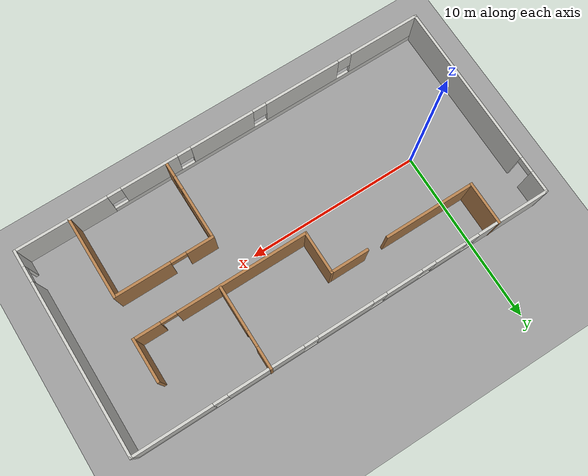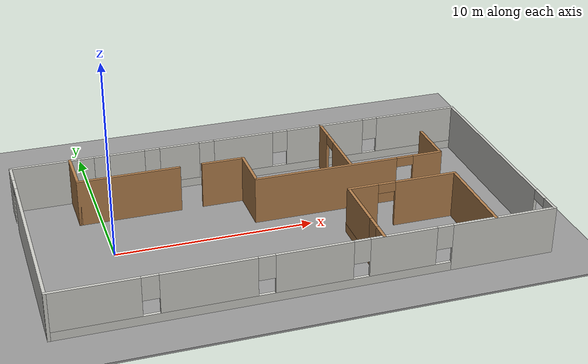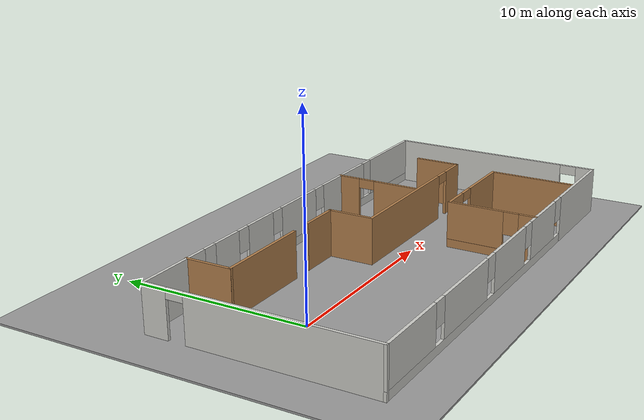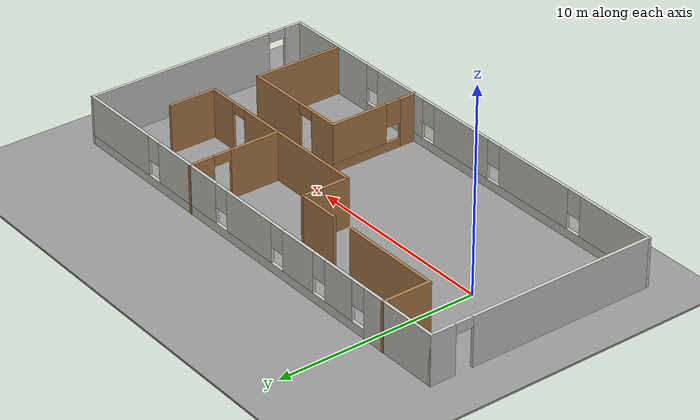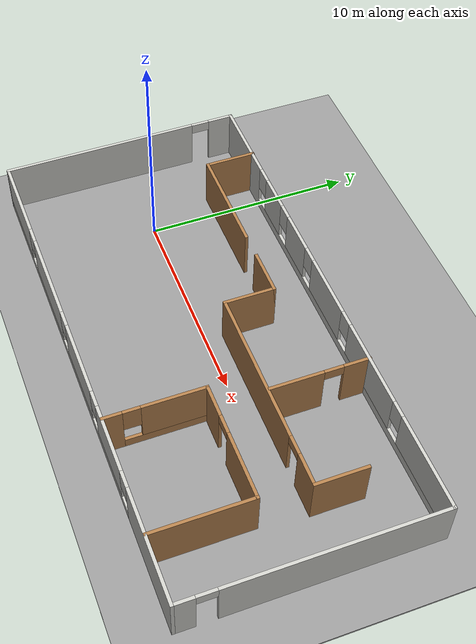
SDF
<sdf version="1.7">
 <world name="default">
  <light name="sun" type="directional">
   <pose>0 0 10 0 -0 0</pose>
   <diffuse>0.8 0.8 0.8 1</diffuse>
   <specular>0.2 0.2 0.2 1</specular>
   <attenuation>
    <range>1000</range>
    <constant>0.9</constant>
    <linear>0.01</linear>
    <quadratic>0.001</quadratic>
   </attenuation>
   <direction>-0.5 0.1 -0.9</direction>
   <spot><inner_angle>0</inner_angle><outer_angle>0</outer_angle><falloff>0</falloff></spot>
  </light>
  <model name="ground_plane">
   <static>1</static>
   <link name="link">
    <collision name="collision">
     <geometry><plane><normal>0 0 1</normal><size>100 100</size></plane></geometry>
     <surface>
      <contact><collide_bitmask>65535</collide_bitmask></contact>
      <friction><ode><mu>100</mu><mu2>50</mu2></ode></friction>
     </surface>
    </collision>
    <visual name="visual">
     <cast_shadows>0</cast_shadows>
     <geometry><plane><normal>0 0 1</normal><size>100 100</size></plane></geometry>
     <material>
      <script><uri>file://media/materials/scripts/gazebo.material</uri><name>Gazebo/Grey</name></script>
     </material>
    </visual>
   </link>
  </model>
  <gravity>0 0 -9.8</gravity>
  <magnetic_field>6e-06 2.3e-05 -4.2e-05</magnetic_field>
  <atmosphere type="adiabatic"/>
  <physics type="ode">
   <max_step_size>0.001</max_step_size>
   <real_time_factor>1</real_time_factor>
   <real_time_update_rate>1000</real_time_update_rate>
  </physics>
  <scene><ambient>0.4 0.4 0.4 1</ambient><background>0.7 0.7 0.7 1</background><shadows>1</shadows></scene>
  <audio><device>default</device></audio>
  <spherical_coordinates>
   <surface_model>EARTH_WGS84</surface_model>
   <latitude_deg>0</latitude_deg>
   <longitude_deg>0</longitude_deg>
   <elevation>0</elevation>
   <heading_deg>0</heading_deg>
  </spherical_coordinates>
  <model name="office_floor">
   <pose>8.002 -0.248582 0 0 -0 0</pose>
   <link name="Wall_1">
    <pose>-12.05 -0.011418 0 0 -0 1.5708</pose>
    <visual name="Wall_1_Visual_0">
     <pose>-1.0945 0 1.25 0 -0 0</pose>
     <geometry><box><size>9.561 0.15 2.5</size></box></geometry>
     <material>
      <script><uri>file://media/materials/scripts/gazebo.material</uri><name>Gazebo/CeilingTiled</name></script>
      <ambient>1 1 1 1</ambient>
     </material>
     <meta><layer>0</layer></meta>
    </visual>
    <collision name="Wall_1_Collision_0">
     <geometry><box><size>9.561 0.15 2.5</size></box></geometry>
     <pose>-1.0945 0 1.25 0 -0 0</pose>
    </collision>
    <visual name="Wall_1_Visual_1">
     <pose>5.2305 0 1.25 0 -0 0</pose>
     <geometry><box><size>1.289 0.15 2.5</size></box></geometry>
     <material>
      <script><uri>file://media/materials/scripts/gazebo.material</uri><name>Gazebo/CeilingTiled</name></script>
      <ambient>1 1 1 1</ambient>
     </material>
     <meta><layer>0</layer></meta>
    </visual>
    <collision name="Wall_1_Collision_1">
     <geometry><box><size>1.289 0.15 2.5</size></box></geometry>
     <pose>5.2305 0 1.25 0 -0 0</pose>
    </collision>
    <visual name="Wall_1_Visual_2">
     <pose>4.136 0 2.25 0 -0 0</pose>
     <geometry><box><size>0.9 0.15 0.5</size></box></geometry>
     <material>
      <script><uri>file://media/materials/scripts/gazebo.material</uri><name>Gazebo/CeilingTiled</name></script>
      <ambient>1 1 1 1</ambient>
     </material>
     <meta><layer>0</layer></meta>
    </visual>
    <collision name="Wall_1_Collision_2">
     <geometry><box><size>0.9 0.15 0.5</size></box></geometry>
     <pose>4.136 0 2.25 0 -0 0</pose>
    </collision>
   </link>
   <link name="Wall_10">
    <collision name="Wall_10_Collision">
     <geometry><box><size>2.5 0.15 2.5</size></box></geometry>
     <pose>0 0 1.25 0 -0 0</pose>
    </collision>
    <visual name="Wall_10_Visual">
     <pose>0 0 1.25 0 -0 0</pose>
     <geometry><box><size>2.5 0.15 2.5</size></box></geometry>
     <material>
      <script><uri>file://media/materials/scripts/gazebo.material</uri><name>Gazebo/Wood</name></script>
      <ambient>1 1 1 1</ambient>
     </material>
     <meta><layer>0</layer></meta>
    </visual>
    <pose>-9.06907 4.63642 0 0 -0 -1.5708</pose>
   </link>
   <link name="Wall_11">
    <collision name="Wall_11_Collision">
     <geometry><box><size>5.25 0.15 2.5</size></box></geometry>
     <pose>0 0 1.25 0 -0 0</pose>
    </collision>
    <visual name="Wall_11_Visual">
     <pose>0 0 1.25 0 -0 0</pose>
     <geometry><box><size>5.25 0.15 2.5</size></box></geometry>
     <material>
      <script><uri>file://media/materials/scripts/gazebo.material</uri><name>Gazebo/Wood</name></script>
      <ambient>1 1 1 1</ambient>
     </material>
     <meta><layer>0</layer></meta>
    </visual>
    <pose>-6.51907 3.46142 0 0 -0 0</pose>
   </link>
   <link name="Wall_13">
    <collision name="Wall_13_Collision">
     <geometry><box><size>2.25 0.15 2.5</size></box></geometry>
     <pose>0 0 1.25 0 -0 0</pose>
    </collision>
    <visual name="Wall_13_Visual">
     <pose>0 0 1.25 0 -0 0</pose>
     <geometry><box><size>2.25 0.15 2.5</size></box></geometry>
     <material>
      <script><uri>file://media/materials/scripts/gazebo.material</uri><name>Gazebo/Wood</name></script>
      <ambient>1 1 1 1</ambient>
     </material>
     <meta><layer>0</layer></meta>
    </visual>
    <pose>-1.66225 3.46618 0 0 -0 0</pose>
   </link>
   <link name="Wall_14">
    <collision name="Wall_14_Collision">
     <geometry><box><size>2.5 0.15 2.5</size></box></geometry>
     <pose>0 0 1.25 0 -0 0</pose>
    </collision>
    <visual name="Wall_14_Visual">
     <pose>0 0 1.25 0 -0 0</pose>
     <geometry><box><size>2.5 0.15 2.5</size></box></geometry>
     <material>
      <script><uri>file://media/materials/scripts/gazebo.material</uri><name>Gazebo/Wood</name></script>
      <ambient>1 1 1 1</ambient>
     </material>
     <meta><layer>0</layer></meta>
    </visual>
    <pose>-0.612253 2.29119 0 0 -0 -1.5708</pose>
   </link>
   <link name="Wall_15">
    <pose>4.31275 1.11618 0 0 -0 0</pose>
    <visual name="Wall_15_Visual_0">
     <pose>-1.23845 0 1.25 0 -0 0</pose>
     <geometry><box><size>7.5231 0.15 2.5</size></box></geometry>
     <material>
      <script><uri>file://media/materials/scripts/gazebo.material</uri><name>Gazebo/Wood</name></script>
      <ambient>1 1 1 1</ambient>
     </material>
     <meta><layer>0</layer></meta>
    </visual>
    <collision name="Wall_15_Collision_0">
     <geometry><box><size>7.5231 0.15 2.5</size></box></geometry>
     <pose>-1.23845 0 1.25 0 -0 0</pose>
    </collision>
    <visual name="Wall_15_Visual_1">
     <pose>4.21155 0 1.25 0 -0 0</pose>
     <geometry><box><size>1.5769 0.15 2.5</size></box></geometry>
     <material>
      <script><uri>file://media/materials/scripts/gazebo.material</uri><name>Gazebo/Wood</name></script>
      <ambient>1 1 1 1</ambient>
     </material>
     <meta><layer>0</layer></meta>
    </visual>
    <collision name="Wall_15_Collision_1">
     <geometry><box><size>1.5769 0.15 2.5</size></box></geometry>
     <pose>4.21155 0 1.25 0 -0 0</pose>
    </collision>
    <visual name="Wall_15_Visual_2">
     <pose>2.9731 0 2.25 0 -0 0</pose>
     <geometry><box><size>0.9 0.15 0.5</size></box></geometry>
     <material>
      <script><uri>file://media/materials/scripts/gazebo.material</uri><name>Gazebo/Wood</name></script>
      <ambient>1 1 1 1</ambient>
     </material>
     <meta><layer>0</layer></meta>
    </visual>
    <collision name="Wall_15_Collision_2">
     <geometry><box><size>0.9 0.15 0.5</size></box></geometry>
     <pose>2.9731 0 2.25 0 -0 0</pose>
    </collision>
   </link>
   <link name="Wall_16">
    <collision name="Wall_16_Collision">
     <geometry><box><size>2.5 0.15 2.5</size></box></geometry>
     <pose>0 0 1.25 0 -0 0</pose>
    </collision>
    <visual name="Wall_16_Visual">
     <pose>0 0 1.25 0 -0 0</pose>
     <geometry><box><size>2.5 0.15 2.5</size></box></geometry>
     <material>
      <script><uri>file://media/materials/scripts/gazebo.material</uri><name>Gazebo/Wood</name></script>
      <ambient>1 1 1 1</ambient>
     </material>
     <meta><layer>0</layer></meta>
    </visual>
    <pose>9.23775 2.29119 0 0 -0 1.5708</pose>
   </link>
   <link name="Wall_18">
    <pose>4.38516 3.51142 0 0 -0 -1.5708</pose>
    <visual name="Wall_18_Visual_0">
     <pose>-1.72933 0 1.25 0 -0 0</pose>
     <geometry><box><size>1.29135 0.15 2.5</size></box></geometry>
     <material>
      <script><uri>file://media/materials/scripts/gazebo.material</uri><name>Gazebo/Wood</name></script>
      <ambient>1 1 1 1</ambient>
     </material>
     <meta><layer>0</layer></meta>
    </visual>
    <collision name="Wall_18_Collision_0">
     <geometry><box><size>1.29135 0.15 2.5</size></box></geometry>
     <pose>-1.72933 0 1.25 0 -0 0</pose>
    </collision>
    <visual name="Wall_18_Visual_1">
     <pose>1.09567 0 1.25 0 -0 0</pose>
     <geometry><box><size>2.55865 0.15 2.5</size></box></geometry>
     <material>
      <script><uri>file://media/materials/scripts/gazebo.material</uri><name>Gazebo/Wood</name></script>
      <ambient>1 1 1 1</ambient>
     </material>
     <meta><layer>0</layer></meta>
    </visual>
    <collision name="Wall_18_Collision_1">
     <geometry><box><size>2.55865 0.15 2.5</size></box></geometry>
     <pose>1.09567 0 1.25 0 -0 0</pose>
    </collision>
    <visual name="Wall_18_Visual_2">
     <pose>-0.63365 0 2.25 0 -0 0</pose>
     <geometry><box><size>0.9 0.15 0.5</size></box></geometry>
     <material>
      <script><uri>file://media/materials/scripts/gazebo.material</uri><name>Gazebo/Wood</name></script>
      <ambient>1 1 1 1</ambient>
     </material>
     <meta><layer>0</layer></meta>
    </visual>
    <collision name="Wall_18_Collision_2">
     <geometry><box><size>0.9 0.15 0.5</size></box></geometry>
     <pose>-0.63365 0 2.25 0 -0 0</pose>
    </collision>
   </link>
   <link name="Wall_21">
    <pose>3.3977 -3.49132 0 0 -0 1.5708</pose>
    <visual name="Wall_21_Visual_0">
     <pose>-1.91194 0 1.25 0 -0 0</pose>
     <geometry><box><size>0.926126 0.15 2.5</size></box></geometry>
     <material>
      <script><uri>file://media/materials/scripts/gazebo.material</uri><name>Gazebo/Wood</name></script>
      <ambient>1 1 1 1</ambient>
     </material>
     <meta><layer>0</layer></meta>
    </visual>
    <collision name="Wall_21_Collision_0">
     <geometry><box><size>0.926126 0.15 2.5</size></box></geometry>
     <pose>-1.91194 0 1.25 0 -0 0</pose>
    </collision>
    <visual name="Wall_21_Visual_1">
     <pose>0.463063 0 0.25 0 -0 0</pose>
     <geometry><box><size>3.82387 0.15 0.5</size></box></geometry>
     <material>
      <script><uri>file://media/materials/scripts/gazebo.material</uri><name>Gazebo/Wood</name></script>
      <ambient>1 1 1 1</ambient>
     </material>
     <meta><layer>0</layer></meta>
    </visual>
    <collision name="Wall_21_Collision_1">
     <geometry><box><size>3.82387 0.15 0.5</size></box></geometry>
     <pose>0.463063 0 0.25 0 -0 0</pose>
    </collision>
    <visual name="Wall_21_Visual_2">
     <pose>0.863063 0 1.5 0 -0 0</pose>
     <geometry><box><size>3.02387 0.15 2</size></box></geometry>
     <material>
      <script><uri>file://media/materials/scripts/gazebo.material</uri><name>Gazebo/Wood</name></script>
      <ambient>1 1 1 1</ambient>
     </material>
     <meta><layer>0</layer></meta>
    </visual>
    <collision name="Wall_21_Collision_2">
     <geometry><box><size>3.02387 0.15 2</size></box></geometry>
     <pose>0.863063 0 1.5 0 -0 0</pose>
    </collision>
    <visual name="Wall_21_Visual_3">
     <pose>-1.04887 0 1.9 0 -0 0</pose>
     <geometry><box><size>0.8 0.15 1.2</size></box></geometry>
     <material>
      <script><uri>file://media/materials/scripts/gazebo.material</uri><name>Gazebo/Wood</name></script>
      <ambient>1 1 1 1</ambient>
     </material>
     <meta><layer>0</layer></meta>
    </visual>
    <collision name="Wall_21_Collision_3">
     <geometry><box><size>0.8 0.15 1.2</size></box></geometry>
     <pose>-1.04887 0 1.9 0 -0 0</pose>
    </collision>
   </link>
   <link name="Wall_22">
    <pose>6.1977 -1.19131 0 0 -0 0</pose>
    <visual name="Wall_22_Visual_0">
     <pose>-2.07601 0 1.25 0 -0 0</pose>
     <geometry><box><size>1.59799 0.15 2.5</size></box></geometry>
     <material>
      <script><uri>file://media/materials/scripts/gazebo.material</uri><name>Gazebo/Wood</name></script>
      <ambient>1 1 1 1</ambient>
     </material>
     <meta><layer>0</layer></meta>
    </visual>
    <collision name="Wall_22_Collision_0">
     <geometry><box><size>1.59799 0.15 2.5</size></box></geometry>
     <pose>-2.07601 0 1.25 0 -0 0</pose>
    </collision>
    <visual name="Wall_22_Visual_1">
     <pose>1.24899 0 1.25 0 -0 0</pose>
     <geometry><box><size>3.25201 0.15 2.5</size></box></geometry>
     <material>
      <script><uri>file://media/materials/scripts/gazebo.material</uri><name>Gazebo/Wood</name></script>
      <ambient>1 1 1 1</ambient>
     </material>
     <meta><layer>0</layer></meta>
    </visual>
    <collision name="Wall_22_Collision_1">
     <geometry><box><size>3.25201 0.15 2.5</size></box></geometry>
     <pose>1.24899 0 1.25 0 -0 0</pose>
    </collision>
    <visual name="Wall_22_Visual_2">
     <pose>-0.827013 0 2.25 0 -0 0</pose>
     <geometry><box><size>0.9 0.15 0.5</size></box></geometry>
     <material>
      <script><uri>file://media/materials/scripts/gazebo.material</uri><name>Gazebo/Wood</name></script>
      <ambient>1 1 1 1</ambient>
     </material>
     <meta><layer>0</layer></meta>
    </visual>
    <collision name="Wall_22_Collision_2">
     <geometry><box><size>0.9 0.15 0.5</size></box></geometry>
     <pose>-0.827013 0 2.25 0 -0 0</pose>
    </collision>
   </link>
   <link name="Wall_23">
    <collision name="Wall_23_Collision">
     <geometry><box><size>4.75 0.15 2.5</size></box></geometry>
     <pose>0 0 1.25 0 -0 0</pose>
    </collision>
    <visual name="Wall_23_Visual">
     <pose>0 0 1.25 0 -0 0</pose>
     <geometry><box><size>4.75 0.15 2.5</size></box></geometry>
     <material>
      <script><uri>file://media/materials/scripts/gazebo.material</uri><name>Gazebo/Wood</name></script>
      <ambient>1 1 1 1</ambient>
     </material>
     <meta><layer>0</layer></meta>
    </visual>
    <pose>8.9977 -3.49132 0 0 -0 -1.5708</pose>
   </link>
   <link name="Wall_4">
    <pose>-0 5.78858 0 0 -0 0</pose>
    <visual name="Wall_4_Visual_0">
     <pose>-9.9875 0 1.25 0 -0 0</pose>
     <geometry><box><size>4.275 0.15 2.5</size></box></geometry>
     <material>
      <script><uri>file://media/materials/scripts/gazebo.material</uri><name>Gazebo/CeilingTiled</name></script>
      <ambient>1 1 1 1</ambient>
     </material>
     <meta><layer>0</layer></meta>
    </visual>
    <collision name="Wall_4_Collision_0">
     <geometry><box><size>4.275 0.15 2.5</size></box></geometry>
     <pose>-9.9875 0 1.25 0 -0 0</pose>
    </collision>
    <visual name="Wall_4_Visual_1">
     <pose>2.1375 0 0.25 0 -0 0</pose>
     <geometry><box><size>19.975 0.15 0.5</size></box></geometry>
     <material>
      <script><uri>file://media/materials/scripts/gazebo.material</uri><name>Gazebo/CeilingTiled</name></script>
      <ambient>1 1 1 1</ambient>
     </material>
     <meta><layer>0</layer></meta>
    </visual>
    <collision name="Wall_4_Collision_1">
     <geometry><box><size>19.975 0.15 0.5</size></box></geometry>
     <pose>2.1375 0 0.25 0 -0 0</pose>
    </collision>
    <visual name="Wall_4_Visual_2">
     <pose>-6.139 0 1.5 0 -0 0</pose>
     <geometry><box><size>1.822 0.15 2</size></box></geometry>
     <material>
      <script><uri>file://media/materials/scripts/gazebo.material</uri><name>Gazebo/CeilingTiled</name></script>
      <ambient>1 1 1 1</ambient>
     </material>
     <meta><layer>0</layer></meta>
    </visual>
    <collision name="Wall_4_Collision_2">
     <geometry><box><size>1.822 0.15 2</size></box></geometry>
     <pose>-6.139 0 1.5 0 -0 0</pose>
    </collision>
    <visual name="Wall_4_Visual_3">
     <pose>-3.379 0 1.5 0 -0 0</pose>
     <geometry><box><size>2.098 0.15 2</size></box></geometry>
     <material>
      <script><uri>file://media/materials/scripts/gazebo.material</uri><name>Gazebo/CeilingTiled</name></script>
      <ambient>1 1 1 1</ambient>
     </material>
     <meta><layer>0</layer></meta>
    </visual>
    <collision name="Wall_4_Collision_3">
     <geometry><box><size>2.098 0.15 2</size></box></geometry>
     <pose>-3.379 0 1.5 0 -0 0</pose>
    </collision>
    <visual name="Wall_4_Visual_4">
     <pose>0.071 0 1.5 0 -0 0</pose>
     <geometry><box><size>3.202 0.15 2</size></box></geometry>
     <material>
      <script><uri>file://media/materials/scripts/gazebo.material</uri><name>Gazebo/CeilingTiled</name></script>
      <ambient>1 1 1 1</ambient>
     </material>
     <meta><layer>0</layer></meta>
    </visual>
    <collision name="Wall_4_Collision_4">
     <geometry><box><size>3.202 0.15 2</size></box></geometry>
     <pose>0.071 0 1.5 0 -0 0</pose>
    </collision>
    <visual name="Wall_4_Visual_5">
     <pose>4.625 0 1.5 0 -0 0</pose>
     <geometry><box><size>4.306 0.15 2</size></box></geometry>
     <material>
      <script><uri>file://media/materials/scripts/gazebo.material</uri><name>Gazebo/CeilingTiled</name></script>
      <ambient>1 1 1 1</ambient>
     </material>
     <meta><layer>0</layer></meta>
    </visual>
    <collision name="Wall_4_Collision_5">
     <geometry><box><size>4.306 0.15 2</size></box></geometry>
     <pose>4.625 0 1.5 0 -0 0</pose>
    </collision>
    <visual name="Wall_4_Visual_6">
     <pose>9.8515 0 1.5 0 -0 0</pose>
     <geometry><box><size>4.547 0.15 2</size></box></geometry>
     <material>
      <script><uri>file://media/materials/scripts/gazebo.material</uri><name>Gazebo/CeilingTiled</name></script>
      <ambient>1 1 1 1</ambient>
     </material>
     <meta><layer>0</layer></meta>
    </visual>
    <collision name="Wall_4_Collision_6">
     <geometry><box><size>4.547 0.15 2</size></box></geometry>
     <pose>9.8515 0 1.5 0 -0 0</pose>
    </collision>
    <visual name="Wall_4_Visual_7">
     <pose>-7.45 0 1.9 0 -0 0</pose>
     <geometry><box><size>0.8 0.15 1.2</size></box></geometry>
     <material>
      <script><uri>file://media/materials/scripts/gazebo.material</uri><name>Gazebo/CeilingTiled</name></script>
      <ambient>1 1 1 1</ambient>
     </material>
     <meta><layer>0</layer></meta>
    </visual>
    <collision name="Wall_4_Collision_7">
     <geometry><box><size>0.8 0.15 1.2</size></box></geometry>
     <pose>-7.45 0 1.9 0 -0 0</pose>
    </collision>
    <visual name="Wall_4_Visual_8">
     <pose>-4.828 0 1.9 0 -0 0</pose>
     <geometry><box><size>0.8 0.15 1.2</size></box></geometry>
     <material>
      <script><uri>file://media/materials/scripts/gazebo.material</uri><name>Gazebo/CeilingTiled</name></script>
      <ambient>1 1 1 1</ambient>
     </material>
     <meta><layer>0</layer></meta>
    </visual>
    <collision name="Wall_4_Collision_8">
     <geometry><box><size>0.8 0.15 1.2</size></box></geometry>
     <pose>-4.828 0 1.9 0 -0 0</pose>
    </collision>
    <visual name="Wall_4_Visual_9">
     <pose>-1.93 0 1.9 0 -0 0</pose>
     <geometry><box><size>0.8 0.15 1.2</size></box></geometry>
     <material>
      <script><uri>file://media/materials/scripts/gazebo.material</uri><name>Gazebo/CeilingTiled</name></script>
      <ambient>1 1 1 1</ambient>
     </material>
     <meta><layer>0</layer></meta>
    </visual>
    <collision name="Wall_4_Collision_9">
     <geometry><box><size>0.8 0.15 1.2</size></box></geometry>
     <pose>-1.93 0 1.9 0 -0 0</pose>
    </collision>
    <visual name="Wall_4_Visual_10">
     <pose>2.072 0 1.9 0 -0 0</pose>
     <geometry><box><size>0.8 0.15 1.2</size></box></geometry>
     <material>
      <script><uri>file://media/materials/scripts/gazebo.material</uri><name>Gazebo/CeilingTiled</name></script>
      <ambient>1 1 1 1</ambient>
     </material>
     <meta><layer>0</layer></meta>
    </visual>
    <collision name="Wall_4_Collision_10">
     <geometry><box><size>0.8 0.15 1.2</size></box></geometry>
     <pose>2.072 0 1.9 0 -0 0</pose>
    </collision>
    <visual name="Wall_4_Visual_11">
     <pose>7.178 0 1.9 0 -0 0</pose>
     <geometry><box><size>0.8 0.15 1.2</size></box></geometry>
     <material>
      <script><uri>file://media/materials/scripts/gazebo.material</uri><name>Gazebo/CeilingTiled</name></script>
      <ambient>1 1 1 1</ambient>
     </material>
     <meta><layer>0</layer></meta>
    </visual>
    <collision name="Wall_4_Collision_11">
     <geometry><box><size>0.8 0.15 1.2</size></box></geometry>
     <pose>7.178 0 1.9 0 -0 0</pose>
    </collision>
   </link>
   <link name="Wall_5">
    <pose>12.05 -0.011418 0 0 -0 -1.5708</pose>
    <visual name="Wall_5_Visual_0">
     <pose>-0.951435 0 1.25 0 -0 0</pose>
     <geometry><box><size>9.84713 0.15 2.5</size></box></geometry>
     <material>
      <script><uri>file://media/materials/scripts/gazebo.material</uri><name>Gazebo/CeilingTiled</name></script>
      <ambient>1 1 1 1</ambient>
     </material>
     <meta><layer>0</layer></meta>
    </visual>
    <collision name="Wall_5_Collision_0">
     <geometry><box><size>9.84713 0.15 2.5</size></box></geometry>
     <pose>-0.951435 0 1.25 0 -0 0</pose>
    </collision>
    <visual name="Wall_5_Visual_1">
     <pose>5.37357 0 1.25 0 -0 0</pose>
     <geometry><box><size>1.00287 0.15 2.5</size></box></geometry>
     <material>
      <script><uri>file://media/materials/scripts/gazebo.material</uri><name>Gazebo/CeilingTiled</name></script>
      <ambient>1 1 1 1</ambient>
     </material>
     <meta><layer>0</layer></meta>
    </visual>
    <collision name="Wall_5_Collision_1">
     <geometry><box><size>1.00287 0.15 2.5</size></box></geometry>
     <pose>5.37357 0 1.25 0 -0 0</pose>
    </collision>
    <visual name="Wall_5_Visual_2">
     <pose>4.42213 0 2.25 0 -0 0</pose>
     <geometry><box><size>0.9 0.15 0.5</size></box></geometry>
     <material>
      <script><uri>file://media/materials/scripts/gazebo.material</uri><name>Gazebo/CeilingTiled</name></script>
      <ambient>1 1 1 1</ambient>
     </material>
     <meta><layer>0</layer></meta>
    </visual>
    <collision name="Wall_5_Collision_2">
     <geometry><box><size>0.9 0.15 0.5</size></box></geometry>
     <pose>4.42213 0 2.25 0 -0 0</pose>
    </collision>
   </link>
   <link name="Wall_6">
    <pose>-0 -5.81142 0 0 -0 3.14159</pose>
    <visual name="Wall_6_Visual_0">
     <pose>-9.47015 0 1.25 0 -0 0</pose>
     <geometry><box><size>5.30971 0.15 2.5</size></box></geometry>
     <material>
      <script><uri>file://media/materials/scripts/gazebo.material</uri><name>Gazebo/CeilingTiled</name></script>
      <ambient>1 1 1 1</ambient>
     </material>
     <meta><layer>0</layer></meta>
    </visual>
    <collision name="Wall_6_Collision_0">
     <geometry><box><size>5.30971 0.15 2.5</size></box></geometry>
     <pose>-9.47015 0 1.25 0 -0 0</pose>
    </collision>
    <visual name="Wall_6_Visual_1">
     <pose>2.65485 0 0.25 0 -0 0</pose>
     <geometry><box><size>18.9403 0.15 0.5</size></box></geometry>
     <material>
      <script><uri>file://media/materials/scripts/gazebo.material</uri><name>Gazebo/CeilingTiled</name></script>
      <ambient>1 1 1 1</ambient>
     </material>
     <meta><layer>0</layer></meta>
    </visual>
    <collision name="Wall_6_Collision_1">
     <geometry><box><size>18.9403 0.15 0.5</size></box></geometry>
     <pose>2.65485 0 0.25 0 -0 0</pose>
    </collision>
    <visual name="Wall_6_Visual_2">
     <pose>-4.36985 0 1.5 0 -0 0</pose>
     <geometry><box><size>3.29088 0.15 2</size></box></geometry>
     <material>
      <script><uri>file://media/materials/scripts/gazebo.material</uri><name>Gazebo/CeilingTiled</name></script>
      <ambient>1 1 1 1</ambient>
     </material>
     <meta><layer>0</layer></meta>
    </visual>
    <collision name="Wall_6_Collision_2">
     <geometry><box><size>3.29088 0.15 2</size></box></geometry>
     <pose>-4.36985 0 1.5 0 -0 0</pose>
    </collision>
    <visual name="Wall_6_Visual_3">
     <pose>-0.059204 0 1.5 0 -0 0</pose>
     <geometry><box><size>3.73041 0.15 2</size></box></geometry>
     <material>
      <script><uri>file://media/materials/scripts/gazebo.material</uri><name>Gazebo/CeilingTiled</name></script>
      <ambient>1 1 1 1</ambient>
     </material>
     <meta><layer>0</layer></meta>
    </visual>
    <collision name="Wall_6_Collision_3">
     <geometry><box><size>3.73041 0.15 2</size></box></geometry>
     <pose>-0.059204 0 1.5 0 -0 0</pose>
    </collision>
    <visual name="Wall_6_Visual_4">
     <pose>4.851 0 1.5 0 -0 0</pose>
     <geometry><box><size>4.49 0.15 2</size></box></geometry>
     <material>
      <script><uri>file://media/materials/scripts/gazebo.material</uri><name>Gazebo/CeilingTiled</name></script>
      <ambient>1 1 1 1</ambient>
     </material>
     <meta><layer>0</layer></meta>
    </visual>
    <collision name="Wall_6_Collision_4">
     <geometry><box><size>4.49 0.15 2</size></box></geometry>
     <pose>4.851 0 1.5 0 -0 0</pose>
    </collision>
    <visual name="Wall_6_Visual_5">
     <pose>10.0105 0 1.5 0 -0 0</pose>
     <geometry><box><size>4.229 0.15 2</size></box></geometry>
     <material>
      <script><uri>file://media/materials/scripts/gazebo.material</uri><name>Gazebo/CeilingTiled</name></script>
      <ambient>1 1 1 1</ambient>
     </material>
     <meta><layer>0</layer></meta>
    </visual>
    <collision name="Wall_6_Collision_5">
     <geometry><box><size>4.229 0.15 2</size></box></geometry>
     <pose>10.0105 0 1.5 0 -0 0</pose>
    </collision>
    <visual name="Wall_6_Visual_6">
     <pose>-6.41529 0 1.9 0 -0 0</pose>
     <geometry><box><size>0.8 0.15 1.2</size></box></geometry>
     <material>
      <script><uri>file://media/materials/scripts/gazebo.material</uri><name>Gazebo/CeilingTiled</name></script>
      <ambient>1 1 1 1</ambient>
     </material>
     <meta><layer>0</layer></meta>
    </visual>
    <collision name="Wall_6_Collision_6">
     <geometry><box><size>0.8 0.15 1.2</size></box></geometry>
     <pose>-6.41529 0 1.9 0 -0 0</pose>
    </collision>
    <visual name="Wall_6_Visual_7">
     <pose>-2.32441 0 1.9 0 -0 0</pose>
     <geometry><box><size>0.8 0.15 1.2</size></box></geometry>
     <material>
      <script><uri>file://media/materials/scripts/gazebo.material</uri><name>Gazebo/CeilingTiled</name></script>
      <ambient>1 1 1 1</ambient>
     </material>
     <meta><layer>0</layer></meta>
    </visual>
    <collision name="Wall_6_Collision_7">
     <geometry><box><size>0.8 0.15 1.2</size></box></geometry>
     <pose>-2.32441 0 1.9 0 -0 0</pose>
    </collision>
    <visual name="Wall_6_Visual_8">
     <pose>2.206 0 1.9 0 -0 0</pose>
     <geometry><box><size>0.8 0.15 1.2</size></box></geometry>
     <material>
      <script><uri>file://media/materials/scripts/gazebo.material</uri><name>Gazebo/CeilingTiled</name></script>
      <ambient>1 1 1 1</ambient>
     </material>
     <meta><layer>0</layer></meta>
    </visual>
    <collision name="Wall_6_Collision_8">
     <geometry><box><size>0.8 0.15 1.2</size></box></geometry>
     <pose>2.206 0 1.9 0 -0 0</pose>
    </collision>
    <visual name="Wall_6_Visual_9">
     <pose>7.496 0 1.9 0 -0 0</pose>
     <geometry><box><size>0.8 0.15 1.2</size></box></geometry>
     <material>
      <script><uri>file://media/materials/scripts/gazebo.material</uri><name>Gazebo/CeilingTiled</name></script>
      <ambient>1 1 1 1</ambient>
     </material>
     <meta><layer>0</layer></meta>
    </visual>
    <collision name="Wall_6_Collision_9">
     <geometry><box><size>0.8 0.15 1.2</size></box></geometry>
     <pose>7.496 0 1.9 0 -0 0</pose>
    </collision>
   </link>
   <static>1</static>
  </model>
  <model name="ground_plane_0">
   <static>1</static>
   <link name="link">
    <collision name="collision">
     <geometry><plane><normal>0 0 1</normal><size>100 100</size></plane></geometry>
     <surface>
      <contact><collide_bitmask>65535</collide_bitmask></contact>
      <friction><ode><mu>100</mu><mu2>50</mu2></ode></friction>
     </surface>
    </collision>
    <visual name="visual">
     <cast_shadows>0</cast_shadows>
     <geometry><plane><normal>0 0 1</normal><size>100 100</size></plane></geometry>
     <material>
      <script><uri>file://media/materials/scripts/gazebo.material</uri><name>Gazebo/Grey</name></script>
     </material>
    </visual>
   </link>
   <pose>5 0 0 0 -0 0</pose>
  </model>
 </world>
</sdf>
